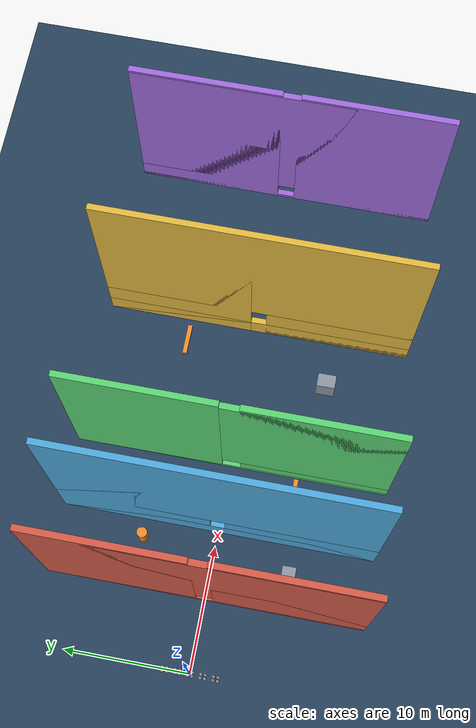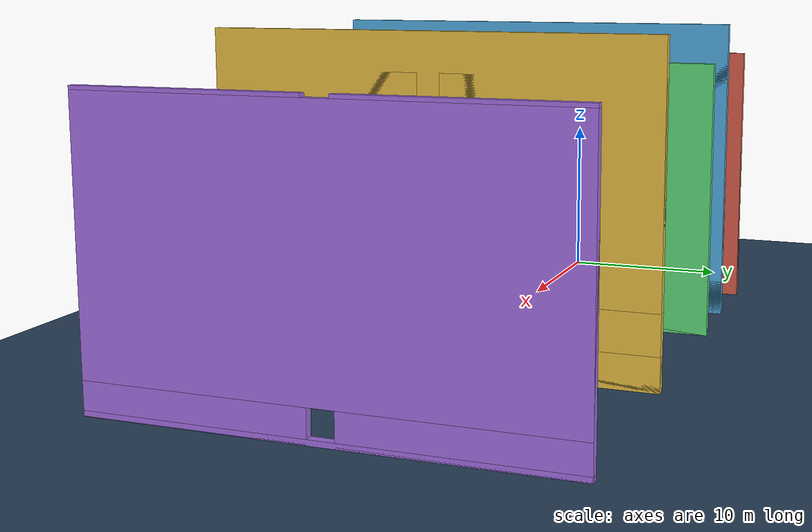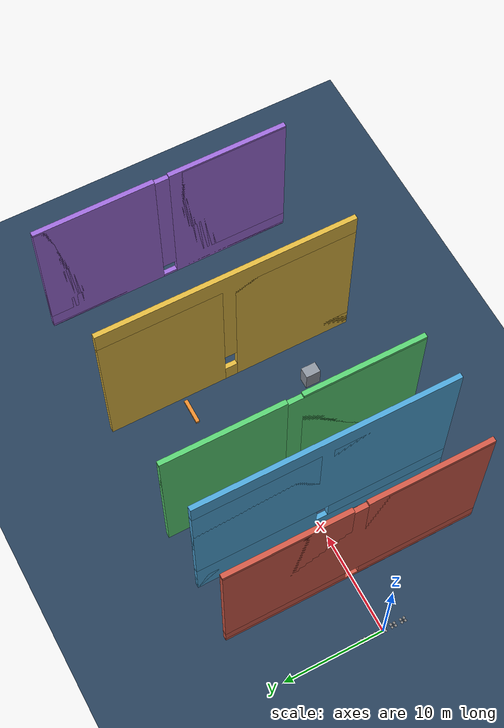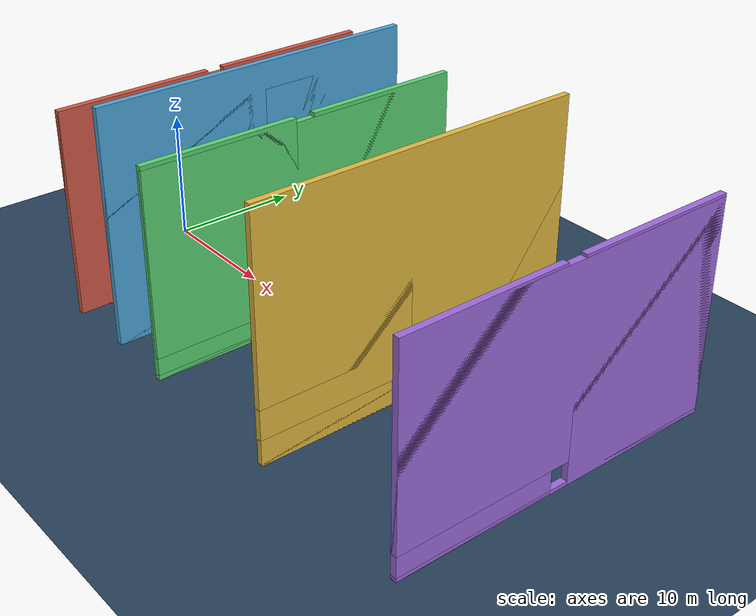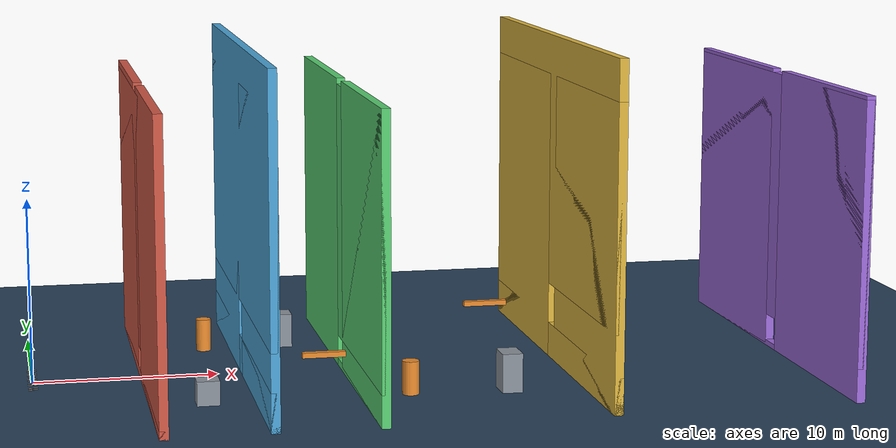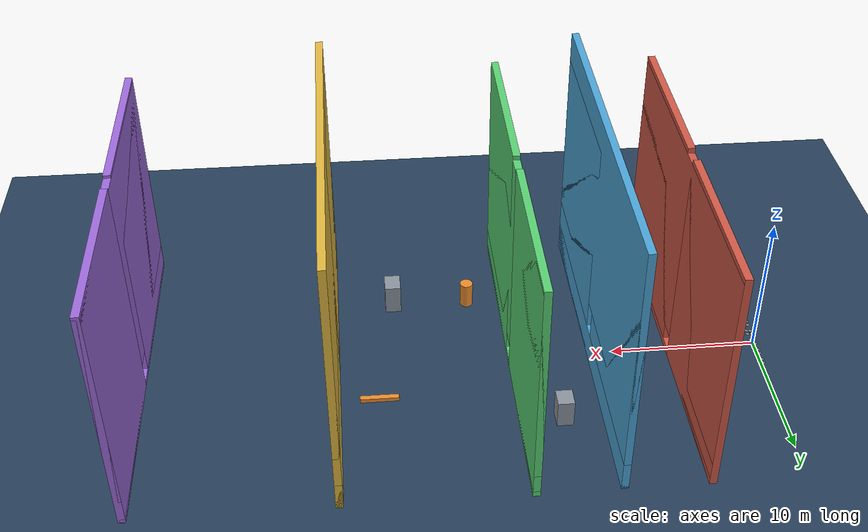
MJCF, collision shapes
<mujoco model="Skydio X2 complex dynamic obstacle zone scene">
    <compiler autolimits="true" assetdir="assets"/>

    <option timestep="0.01" density="1.225" viscosity="1.8e-5"/>

    <default>
        <default class="x2">
            <geom mass="0"/>
            <motor ctrlrange="0 13"/>
            <mesh scale="0.01 0.01 0.01"/>
            <default class="visual">
                <geom group="2" type="mesh" contype="0" conaffinity="0"/>
            </default>
            <default class="collision">
                <geom group="3" type="box"/>
                <default class="rotor">
                    <geom type="ellipsoid" size=".13 .13 .01"/>
                </default>
            </default>
            <site group="5"/>
        </default>
    </default>

    <asset>
        <texture type="skybox" builtin="gradient" rgb1="0.3 0.5 0.7" rgb2="0 0 0" width="512" height="3072"/>
        <texture type="2d" name="groundplane" builtin="checker" mark="edge" rgb1="0.2 0.3 0.4" rgb2="0.1 0.2 0.3"
            markrgb="0.8 0.8 0.8" width="300" height="300"/>
        <material name="groundplane" texture="groundplane" texuniform="true" texrepeat="5 5" reflectance="0.2"/>
        <texture type="2d" file="X2_lowpoly_texture_SpinningProps_1024.png"/>
        <material name="phong3SG" texture="X2_lowpoly_texture_SpinningProps_1024"/>
        <material name="invisible" rgba="0 0 0 0"/>
        <material name="gate_material_a" rgba="0.82 0.35 0.28 1" specular="0.3" shininess="0.4"/>
        <material name="gate_material_b" rgba="0.30 0.65 0.85 1" specular="0.3" shininess="0.4"/>
        <material name="gate_material_c" rgba="0.35 0.82 0.45 1" specular="0.3" shininess="0.4"/>
        <material name="gate_material_d" rgba="0.88 0.72 0.25 1" specular="0.3" shininess="0.4"/>
        <material name="gate_material_e" rgba="0.62 0.42 0.86 1" specular="0.3" shininess="0.4"/>
        <material name="solid_obstacle_material" rgba="0.55 0.58 0.62 1" specular="0.2" shininess="0.25"/>
        <material name="warning_obstacle_material" rgba="0.92 0.55 0.18 1" specular="0.2" shininess="0.25"/>
        <mesh class="x2" file="X2_lowpoly.obj"/>
    </asset>

    <worldbody>
        <light name="spotlight" mode="targetbodycom" target="x2_1" pos="1 -2 3"/>
        <light pos="0 0 4" dir="0 0 -1" directional="true"/>
        <geom name="floor" size="0 0 0.05" type="plane" material="groundplane"/>

        <geom name="gate1_left_post" type="box" pos="6.0 -6.66 8.00" size="0.24 6.00 8.00" material="gate_material_a"/>
        <geom name="gate1_right_post" type="box" pos="6.0 6.66 8.00" size="0.24 6.00 8.00" material="gate_material_a"/>
        <geom name="gate1_top_beam" type="box" pos="6.0 0.00 8.65" size="0.24 12.66 7.00" material="gate_material_a"/>
        <geom name="gate1_bottom_beam" type="box" pos="6.0 0.00 0.225" size="0.24 12.66 0.225" material="gate_material_a"/>

        <geom name="gate2_left_post" type="box" pos="11.5 -6.58 8.00" size="0.24 6.00 8.00" material="gate_material_b"/>
        <geom name="gate2_right_post" type="box" pos="11.5 6.58 8.00" size="0.24 6.00 8.00" material="gate_material_b"/>
        <geom name="gate2_top_beam" type="box" pos="11.5 0.00 11.05" size="0.24 12.58 7.00" material="gate_material_b"/>
        <geom name="gate2_bottom_beam" type="box" pos="11.5 0.00 1.025" size="0.24 12.58 1.025" material="gate_material_b"/>

        <geom name="gate3_left_post" type="box" pos="17.0 -6.74 8.00" size="0.24 6.00 8.00" material="gate_material_c"/>
        <geom name="gate3_right_post" type="box" pos="17.0 6.74 8.00" size="0.24 6.00 8.00" material="gate_material_c"/>
        <geom name="gate3_top_beam" type="box" pos="17.0 0.00 8.70" size="0.24 12.74 7.00" material="gate_material_c"/>
        <geom name="gate3_bottom_beam" type="box" pos="17.0 0.00 0.200" size="0.24 12.74 0.200" material="gate_material_c"/>

        <geom name="gate4_left_post" type="box" pos="29.0 -6.63 8.00" size="0.24 6.00 8.00" material="gate_material_d"/>
        <geom name="gate4_right_post" type="box" pos="29.0 6.63 8.00" size="0.24 6.00 8.00" material="gate_material_d"/>
        <geom name="gate4_top_beam" type="box" pos="29.0 0.00 11.1725" size="0.24 12.63 7.00" material="gate_material_d"/>
        <geom name="gate4_bottom_beam" type="box" pos="29.0 0.00 0.96375" size="0.24 12.63 0.96375" material="gate_material_d"/>

        <geom name="gate5_left_post" type="box" pos="42.0 -6.71 8.00" size="0.24 6.00 8.00" material="gate_material_e"/>
        <geom name="gate5_right_post" type="box" pos="42.0 6.71 8.00" size="0.24 6.00 8.00" material="gate_material_e"/>
        <geom name="gate5_top_beam" type="box" pos="42.0 0.00 8.80" size="0.24 12.71 7.00" material="gate_material_e"/>
        <geom name="gate5_bottom_beam" type="box" pos="42.0 0.00 0.150" size="0.24 12.71 0.150" material="gate_material_e"/>

        <geom name="side_box_a" type="box" pos="8.8 -6.1 0.65" size="0.60 0.55 0.65" material="solid_obstacle_material"/>
        <geom name="side_box_b" type="box" pos="14.3 6.2 0.95" size="0.55 0.65 0.95" material="solid_obstacle_material"/>
        <geom name="side_box_c" type="box" pos="24.8 -6.4 1.05" size="0.55 0.75 1.05" material="solid_obstacle_material"/>
        <geom name="side_cylinder_a" type="cylinder" pos="9.8 5.8 0.90" size="0.42 0.90" material="warning_obstacle_material"/>
        <geom name="side_cylinder_b" type="cylinder" pos="19.5 -6.2 0.90" size="0.45 0.90" material="warning_obstacle_material"/>
        <geom name="floating_beam_a" type="box" pos="15.0 -5.4 2.15" size="1.15 0.18 0.14" material="warning_obstacle_material"/>
        <geom name="floating_beam_b" type="box" pos="26.2 5.5 2.10" size="1.25 0.18 0.14" material="warning_obstacle_material"/>

        <body name="x2_1" pos="0.0 0.0 0.1" childclass="x2">
            <freejoint/>
            <camera name="q1_track" pos="-1 0 .5" xyaxes="0 -1 0 1 0 2" mode="trackcom"/>
            <site name="q1_imu" pos="0 0 .02"/>
            <geom material="phong3SG" mesh="X2_lowpoly" class="visual" quat="0 0 1 1"/>
            <geom class="collision" size=".06 .027 .02" pos=".04 0 .02"/>
            <geom class="collision" size=".06 .027 .02" pos=".04 0 .06"/>
            <geom class="collision" size=".05 .027 .02" pos="-.07 0 .065"/>
            <geom class="collision" size=".023 .017 .01" pos="-.137 .008 .065" quat="1 0 0 1"/>
            <geom name="q1_rotor1" class="rotor" pos="-.14 -.18 .05" mass=".25"/>
            <geom name="q1_rotor2" class="rotor" pos="-.14 .18 .05" mass=".25"/>
            <geom name="q1_rotor3" class="rotor" pos=".14 .18 .08" mass=".25"/>
            <geom name="q1_rotor4" class="rotor" pos=".14 -.18 .08" mass=".25"/>
            <geom size=".16 .04 .02" pos="0 0 0.02" type="ellipsoid" mass=".325" class="visual" material="invisible"/>
            <site name="q1_thrust1" pos="-.14 -.18 .05"/>
            <site name="q1_thrust2" pos="-.14 .18 .05"/>
            <site name="q1_thrust3" pos=".14 .18 .08"/>
            <site name="q1_thrust4" pos=".14 -.18 .08"/>
        </body>

        <body name="x2_2" pos="0.0 1.0 0.1" childclass="x2">
            <freejoint/>
            <camera name="q2_track" pos="-1 0 .5" xyaxes="0 -1 0 1 0 2" mode="trackcom"/>
            <site name="q2_imu" pos="0 0 .02"/>
            <geom material="phong3SG" mesh="X2_lowpoly" class="visual" quat="0 0 1 1"/>
            <geom class="collision" size=".06 .027 .02" pos=".04 0 .02"/>
            <geom class="collision" size=".06 .027 .02" pos=".04 0 .06"/>
            <geom class="collision" size=".05 .027 .02" pos="-.07 0 .065"/>
            <geom class="collision" size=".023 .017 .01" pos="-.137 .008 .065" quat="1 0 0 1"/>
            <geom name="q2_rotor1" class="rotor" pos="-.14 -.18 .05" mass=".25"/>
            <geom name="q2_rotor2" class="rotor" pos="-.14 .18 .05" mass=".25"/>
            <geom name="q2_rotor3" class="rotor" pos=".14 .18 .08" mass=".25"/>
            <geom name="q2_rotor4" class="rotor" pos=".14 -.18 .08" mass=".25"/>
            <geom size=".16 .04 .02" pos="0 0 0.02" type="ellipsoid" mass=".325" class="visual" material="invisible"/>
            <site name="q2_thrust1" pos="-.14 -.18 .05"/>
            <site name="q2_thrust2" pos="-.14 .18 .05"/>
            <site name="q2_thrust3" pos=".14 .18 .08"/>
            <site name="q2_thrust4" pos=".14 -.18 .08"/>
        </body>

        <body name="x2_3" pos="0.0 -1.0 0.1" childclass="x2">
            <freejoint/>
            <camera name="q3_track" pos="-1 0 .5" xyaxes="0 -1 0 1 0 2" mode="trackcom"/>
            <site name="q3_imu" pos="0 0 .02"/>
            <geom material="phong3SG" mesh="X2_lowpoly" class="visual" quat="0 0 1 1"/>
            <geom class="collision" size=".06 .027 .02" pos=".04 0 .02"/>
            <geom class="collision" size=".06 .027 .02" pos=".04 0 .06"/>
            <geom class="collision" size=".05 .027 .02" pos="-.07 0 .065"/>
            <geom class="collision" size=".023 .017 .01" pos="-.137 .008 .065" quat="1 0 0 1"/>
            <geom name="q3_rotor1" class="rotor" pos="-.14 -.18 .05" mass=".25"/>
            <geom name="q3_rotor2" class="rotor" pos="-.14 .18 .05" mass=".25"/>
            <geom name="q3_rotor3" class="rotor" pos=".14 .18 .08" mass=".25"/>
            <geom name="q3_rotor4" class="rotor" pos=".14 -.18 .08" mass=".25"/>
            <geom size=".16 .04 .02" pos="0 0 0.02" type="ellipsoid" mass=".325" class="visual" material="invisible"/>
            <site name="q3_thrust1" pos="-.14 -.18 .05"/>
            <site name="q3_thrust2" pos="-.14 .18 .05"/>
            <site name="q3_thrust3" pos=".14 .18 .08"/>
            <site name="q3_thrust4" pos=".14 -.18 .08"/>
        </body>

        <body name="x2_4" pos="0.0 2.0 0.1" childclass="x2">
            <freejoint/>
            <camera name="q4_track" pos="-1 0 .5" xyaxes="0 -1 0 1 0 2" mode="trackcom"/>
            <site name="q4_imu" pos="0 0 .02"/>
            <geom material="phong3SG" mesh="X2_lowpoly" class="visual" quat="0 0 1 1"/>
            <geom class="collision" size=".06 .027 .02" pos=".04 0 .02"/>
            <geom class="collision" size=".06 .027 .02" pos=".04 0 .06"/>
            <geom class="collision" size=".05 .027 .02" pos="-.07 0 .065"/>
            <geom class="collision" size=".023 .017 .01" pos="-.137 .008 .065" quat="1 0 0 1"/>
            <geom name="q4_rotor1" class="rotor" pos="-.14 -.18 .05" mass=".25"/>
            <geom name="q4_rotor2" class="rotor" pos="-.14 .18 .05" mass=".25"/>
            <geom name="q4_rotor3" class="rotor" pos=".14 .18 .08" mass=".25"/>
            <geom name="q4_rotor4" class="rotor" pos=".14 -.18 .08" mass=".25"/>
            <geom size=".16 .04 .02" pos="0 0 0.02" type="ellipsoid" mass=".325" class="visual" material="invisible"/>
            <site name="q4_thrust1" pos="-.14 -.18 .05"/>
            <site name="q4_thrust2" pos="-.14 .18 .05"/>
            <site name="q4_thrust3" pos=".14 .18 .08"/>
            <site name="q4_thrust4" pos=".14 -.18 .08"/>
        </body>

        <body name="x2_5" pos="0.0 -2.0 0.1" childclass="x2">
            <freejoint/>
            <camera name="q5_track" pos="-1 0 .5" xyaxes="0 -1 0 1 0 2" mode="trackcom"/>
            <site name="q5_imu" pos="0 0 .02"/>
            <geom material="phong3SG" mesh="X2_lowpoly" class="visual" quat="0 0 1 1"/>
            <geom class="collision" size=".06 .027 .02" pos=".04 0 .02"/>
            <geom class="collision" size=".06 .027 .02" pos=".04 0 .06"/>
            <geom class="collision" size=".05 .027 .02" pos="-.07 0 .065"/>
            <geom class="collision" size=".023 .017 .01" pos="-.137 .008 .065" quat="1 0 0 1"/>
            <geom name="q5_rotor1" class="rotor" pos="-.14 -.18 .05" mass=".25"/>
            <geom name="q5_rotor2" class="rotor" pos="-.14 .18 .05" mass=".25"/>
            <geom name="q5_rotor3" class="rotor" pos=".14 .18 .08" mass=".25"/>
            <geom name="q5_rotor4" class="rotor" pos=".14 -.18 .08" mass=".25"/>
            <geom size=".16 .04 .02" pos="0 0 0.02" type="ellipsoid" mass=".325" class="visual" material="invisible"/>
            <site name="q5_thrust1" pos="-.14 -.18 .05"/>
            <site name="q5_thrust2" pos="-.14 .18 .05"/>
            <site name="q5_thrust3" pos=".14 .18 .08"/>
            <site name="q5_thrust4" pos=".14 -.18 .08"/>
        </body>
    </worldbody>

    <actuator>
        <motor class="x2" name="q1_thrust1" site="q1_thrust1" gear="0 0 1 0 0  .0201"/>
        <motor class="x2" name="q1_thrust2" site="q1_thrust2" gear="0 0 1 0 0 -.0201"/>
        <motor class="x2" name="q1_thrust3" site="q1_thrust3" gear="0 0 1 0 0  .0201"/>
        <motor class="x2" name="q1_thrust4" site="q1_thrust4" gear="0 0 1 0 0 -.0201"/>

        <motor class="x2" name="q2_thrust1" site="q2_thrust1" gear="0 0 1 0 0  .0201"/>
        <motor class="x2" name="q2_thrust2" site="q2_thrust2" gear="0 0 1 0 0 -.0201"/>
        <motor class="x2" name="q2_thrust3" site="q2_thrust3" gear="0 0 1 0 0  .0201"/>
        <motor class="x2" name="q2_thrust4" site="q2_thrust4" gear="0 0 1 0 0 -.0201"/>

        <motor class="x2" name="q3_thrust1" site="q3_thrust1" gear="0 0 1 0 0  .0201"/>
        <motor class="x2" name="q3_thrust2" site="q3_thrust2" gear="0 0 1 0 0 -.0201"/>
        <motor class="x2" name="q3_thrust3" site="q3_thrust3" gear="0 0 1 0 0  .0201"/>
        <motor class="x2" name="q3_thrust4" site="q3_thrust4" gear="0 0 1 0 0 -.0201"/>

        <motor class="x2" name="q4_thrust1" site="q4_thrust1" gear="0 0 1 0 0  .0201"/>
        <motor class="x2" name="q4_thrust2" site="q4_thrust2" gear="0 0 1 0 0 -.0201"/>
        <motor class="x2" name="q4_thrust3" site="q4_thrust3" gear="0 0 1 0 0  .0201"/>
        <motor class="x2" name="q4_thrust4" site="q4_thrust4" gear="0 0 1 0 0 -.0201"/>

        <motor class="x2" name="q5_thrust1" site="q5_thrust1" gear="0 0 1 0 0  .0201"/>
        <motor class="x2" name="q5_thrust2" site="q5_thrust2" gear="0 0 1 0 0 -.0201"/>
        <motor class="x2" name="q5_thrust3" site="q5_thrust3" gear="0 0 1 0 0  .0201"/>
        <motor class="x2" name="q5_thrust4" site="q5_thrust4" gear="0 0 1 0 0 -.0201"/>
    </actuator>

    <keyframe>
        <key name="hover"
             qpos="0.0 0.0 0.3 1 0 0 0 0.0 1.0 0.3 1 0 0 0 0.0 -1.0 0.3 1 0 0 0 0.0 2.0 0.3 1 0 0 0 0.0 -2.0 0.3 1 0 0 0"
             ctrl="3.2495625 3.2495625 3.2495625 3.2495625 3.2495625 3.2495625 3.2495625 3.2495625 3.2495625 3.2495625 3.2495625 3.2495625 3.2495625 3.2495625 3.2495625 3.2495625 3.2495625 3.2495625 3.2495625 3.2495625"/>
    </keyframe>

    <sensor>
        <gyro name="q1_body_gyro" site="q1_imu"/>
        <accelerometer name="q1_body_linacc" site="q1_imu"/>
        <framequat name="q1_body_quat" objtype="site" objname="q1_imu"/>

        <gyro name="q2_body_gyro" site="q2_imu"/>
        <accelerometer name="q2_body_linacc" site="q2_imu"/>
        <framequat name="q2_body_quat" objtype="site" objname="q2_imu"/>

        <gyro name="q3_body_gyro" site="q3_imu"/>
        <accelerometer name="q3_body_linacc" site="q3_imu"/>
        <framequat name="q3_body_quat" objtype="site" objname="q3_imu"/>

        <gyro name="q4_body_gyro" site="q4_imu"/>
        <accelerometer name="q4_body_linacc" site="q4_imu"/>
        <framequat name="q4_body_quat" objtype="site" objname="q4_imu"/>

        <gyro name="q5_body_gyro" site="q5_imu"/>
        <accelerometer name="q5_body_linacc" site="q5_imu"/>
        <framequat name="q5_body_quat" objtype="site" objname="q5_imu"/>
    </sensor>
</mujoco>
